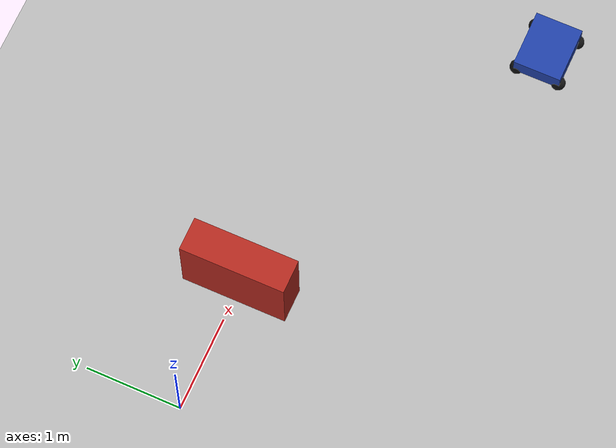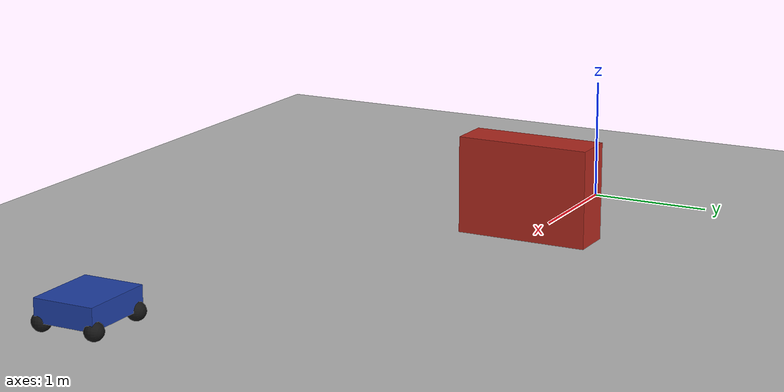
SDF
<?xml version="1.0"?>
<sdf version="1.7">
  <world name="phase1_omni">
    <physics name="1ms" type="ignored">
      <max_step_size>0.001</max_step_size>
      <real_time_factor>1.0</real_time_factor>
    </physics>

    <plugin
      filename="ignition-gazebo-physics-system"
      name="ignition::gazebo::systems::Physics"/>
    <plugin
      filename="ignition-gazebo-user-commands-system"
      name="ignition::gazebo::systems::UserCommands"/>
    <plugin
      filename="ignition-gazebo-scene-broadcaster-system"
      name="ignition::gazebo::systems::SceneBroadcaster"/>
    <plugin
      filename="ignition-gazebo-sensors-system"
      name="ignition::gazebo::systems::Sensors">
      <render_engine>ogre2</render_engine>
    </plugin>

    <light type="directional" name="sun">
      <cast_shadows>true</cast_shadows>
      <pose>0 0 10 0 0 0</pose>
      <diffuse>0.9 0.9 0.9 1</diffuse>
      <specular>0.2 0.2 0.2 1</specular>
      <attenuation>
        <range>1000</range>
        <constant>0.9</constant>
        <linear>0.01</linear>
        <quadratic>0.001</quadratic>
      </attenuation>
      <direction>-0.5 0.1 -0.9</direction>
    </light>

    <model name="ground_plane">
      <static>true</static>
      <link name="ground_link">
        <collision name="ground_collision">
          <geometry>
            <plane>
              <normal>0 0 1</normal>
              <size>20 20</size>
            </plane>
          </geometry>
          <surface>
            <friction>
              <ode>
                <mu>50</mu>
                <mu2>50</mu2>
              </ode>
            </friction>
          </surface>
        </collision>
        <visual name="ground_visual">
          <geometry>
            <plane>
              <normal>0 0 1</normal>
              <size>20 20</size>
            </plane>
          </geometry>
          <material>
            <ambient>0.72 0.72 0.72 1</ambient>
            <diffuse>0.72 0.72 0.72 1</diffuse>
            <specular>0.05 0.05 0.05 1</specular>
          </material>
        </visual>
      </link>
    </model>

    <model name="center_block">
      <static>true</static>
      <pose>1.4 0 0.4 0 0 0</pose>
      <link name="block_link">
        <collision name="block_collision">
          <geometry>
            <box><size>0.35 1.10 0.80</size></box>
          </geometry>
        </collision>
        <visual name="block_visual">
          <geometry>
            <box><size>0.35 1.10 0.80</size></box>
          </geometry>
          <material>
            <ambient>0.70 0.16 0.12 1</ambient>
            <diffuse>0.70 0.16 0.12 1</diffuse>
            <specular>0.05 0.05 0.05 1</specular>
          </material>
        </visual>
      </link>
    </model>

    <model name="rm_sentry_2027" xmlns:ignition="http://ignitionrobotics.org/schema">
      <pose>4.90 -1.80 0 0 0 0</pose>

      <link name="base_link">
        <inertial>
          <pose>0 0 0.17 0 0 0</pose>
          <mass>30.0</mass>
          <inertia>
            <ixx>0.706</ixx>
            <ixy>0</ixy>
            <ixz>0</ixz>
            <iyy>0.981</iyy>
            <iyz>0</iyz>
            <izz>1.525</izz>
          </inertia>
        </inertial>
        <collision name="base_collision">
          <pose>0 0 0.17 0 0 0</pose>
          <geometry>
            <box>
              <size>0.60 0.50 0.18</size>
            </box>
          </geometry>
        </collision>
        <visual name="base_visual">
          <pose>0 0 0.17 0 0 0</pose>
          <geometry>
            <box>
              <size>0.60 0.50 0.18</size>
            </box>
          </geometry>
          <material>
            <ambient>0.12 0.25 0.65 1</ambient>
            <diffuse>0.12 0.25 0.65 1</diffuse>
            <specular>0.15 0.15 0.15 1</specular>
          </material>
        </visual>
      </link>

      <link name="sim_lidar_link">
        <pose relative_to="base_link">0 0 0.35 0 0 0</pose>
        <inertial>
          <mass>0.1</mass>
          <inertia>
            <ixx>0.0001</ixx><ixy>0</ixy><ixz>0</ixz>
            <iyy>0.0001</iyy><iyz>0</iyz><izz>0.0001</izz>
          </inertia>
        </inertial>
        <sensor name="phase1_planar_lidar" type="gpu_lidar">
          <topic>/model/rm_sentry_2027/sim_lidar/scan</topic>
          <update_rate>15</update_rate>
          <lidar>
            <scan>
              <horizontal>
                <samples>720</samples>
                <resolution>1</resolution>
                <min_angle>-3.14159265359</min_angle>
                <max_angle>3.14159265359</max_angle>
              </horizontal>
              <vertical>
                <samples>1</samples>
                <resolution>1</resolution>
                <min_angle>0</min_angle>
                <max_angle>0</max_angle>
              </vertical>
            </scan>
            <range>
              <min>0.10</min>
              <max>8.0</max>
              <resolution>0.01</resolution>
            </range>
            <noise>
              <type>gaussian</type>
              <mean>0.0</mean>
              <stddev>0.01</stddev>
            </noise>
          </lidar>
          <alwaysOn>1</alwaysOn>
          <visualize>false</visualize>
        </sensor>
      </link>

      <joint name="base_link_to_sim_lidar_link" type="fixed">
        <parent>base_link</parent>
        <child>sim_lidar_link</child>
      </joint>

      <link name="front_left_wheel">
        <pose>0.25 0.225 0.075 -1.57079632679 0 0</pose>
        <inertial>
          <mass>1.0</mass>
          <inertia>
            <ixx>0.00225</ixx><ixy>0</ixy><ixz>0</ixz>
            <iyy>0.00225</iyy><iyz>0</iyz><izz>0.00225</izz>
          </inertia>
        </inertial>
        <collision name="collision">
          <geometry><sphere><radius>0.075</radius></sphere></geometry>
          <surface>
            <friction>
              <ode>
                <mu>1.0</mu><mu2>0.0</mu2>
                <fdir1 ignition:expressed_in="base_link">1 -1 0</fdir1>
              </ode>
            </friction>
          </surface>
        </collision>
        <visual name="visual">
          <geometry><sphere><radius>0.075</radius></sphere></geometry>
          <material><ambient>0.08 0.08 0.08 1</ambient><diffuse>0.08 0.08 0.08 1</diffuse></material>
        </visual>
      </link>

      <link name="front_right_wheel">
        <pose>0.25 -0.225 0.075 -1.57079632679 0 0</pose>
        <inertial>
          <mass>1.0</mass>
          <inertia>
            <ixx>0.00225</ixx><ixy>0</ixy><ixz>0</ixz>
            <iyy>0.00225</iyy><iyz>0</iyz><izz>0.00225</izz>
          </inertia>
        </inertial>
        <collision name="collision">
          <geometry><sphere><radius>0.075</radius></sphere></geometry>
          <surface>
            <friction>
              <ode>
                <mu>1.0</mu><mu2>0.0</mu2>
                <fdir1 ignition:expressed_in="base_link">1 1 0</fdir1>
              </ode>
            </friction>
          </surface>
        </collision>
        <visual name="visual">
          <geometry><sphere><radius>0.075</radius></sphere></geometry>
          <material><ambient>0.08 0.08 0.08 1</ambient><diffuse>0.08 0.08 0.08 1</diffuse></material>
        </visual>
      </link>

      <link name="rear_left_wheel">
        <pose>-0.25 0.225 0.075 -1.57079632679 0 0</pose>
        <inertial>
          <mass>1.0</mass>
          <inertia>
            <ixx>0.00225</ixx><ixy>0</ixy><ixz>0</ixz>
            <iyy>0.00225</iyy><iyz>0</iyz><izz>0.00225</izz>
          </inertia>
        </inertial>
        <collision name="collision">
          <geometry><sphere><radius>0.075</radius></sphere></geometry>
          <surface>
            <friction>
              <ode>
                <mu>1.0</mu><mu2>0.0</mu2>
                <fdir1 ignition:expressed_in="base_link">1 1 0</fdir1>
              </ode>
            </friction>
          </surface>
        </collision>
        <visual name="visual">
          <geometry><sphere><radius>0.075</radius></sphere></geometry>
          <material><ambient>0.08 0.08 0.08 1</ambient><diffuse>0.08 0.08 0.08 1</diffuse></material>
        </visual>
      </link>

      <link name="rear_right_wheel">
        <pose>-0.25 -0.225 0.075 -1.57079632679 0 0</pose>
        <inertial>
          <mass>1.0</mass>
          <inertia>
            <ixx>0.00225</ixx><ixy>0</ixy><ixz>0</ixz>
            <iyy>0.00225</iyy><iyz>0</iyz><izz>0.00225</izz>
          </inertia>
        </inertial>
        <collision name="collision">
          <geometry><sphere><radius>0.075</radius></sphere></geometry>
          <surface>
            <friction>
              <ode>
                <mu>1.0</mu><mu2>0.0</mu2>
                <fdir1 ignition:expressed_in="base_link">1 -1 0</fdir1>
              </ode>
            </friction>
          </surface>
        </collision>
        <visual name="visual">
          <geometry><sphere><radius>0.075</radius></sphere></geometry>
          <material><ambient>0.08 0.08 0.08 1</ambient><diffuse>0.08 0.08 0.08 1</diffuse></material>
        </visual>
      </link>

      <joint name="front_left_wheel_joint" type="revolute">
        <parent>base_link</parent><child>front_left_wheel</child>
        <axis><xyz>0 0 1</xyz></axis>
      </joint>
      <joint name="front_right_wheel_joint" type="revolute">
        <parent>base_link</parent><child>front_right_wheel</child>
        <axis><xyz>0 0 1</xyz></axis>
      </joint>
      <joint name="rear_left_wheel_joint" type="revolute">
        <parent>base_link</parent><child>rear_left_wheel</child>
        <axis><xyz>0 0 1</xyz></axis>
      </joint>
      <joint name="rear_right_wheel_joint" type="revolute">
        <parent>base_link</parent><child>rear_right_wheel</child>
        <axis><xyz>0 0 1</xyz></axis>
      </joint>

      <plugin
        filename="ignition-gazebo-mecanum-drive-system"
        name="ignition::gazebo::systems::MecanumDrive">
        <front_left_joint>front_left_wheel_joint</front_left_joint>
        <front_right_joint>front_right_wheel_joint</front_right_joint>
        <back_left_joint>rear_left_wheel_joint</back_left_joint>
        <back_right_joint>rear_right_wheel_joint</back_right_joint>
        <wheel_separation>0.45</wheel_separation>
        <wheelbase>0.50</wheelbase>
        <wheel_radius>0.075</wheel_radius>
        <min_velocity>-2.0</min_velocity>
        <max_velocity>2.0</max_velocity>
        <min_acceleration>-2.0</min_acceleration>
        <max_acceleration>2.0</max_acceleration>
        <topic>/model/rm_sentry_2027/cmd_vel</topic>
      </plugin>

      <plugin
        filename="ignition-gazebo-odometry-publisher-system"
        name="ignition::gazebo::systems::OdometryPublisher">
        <odom_publish_frequency>50</odom_publish_frequency>
        <odom_topic>/model/rm_sentry_2027/odometry</odom_topic>
        <tf_topic>/model/rm_sentry_2027/ground_truth_pose</tf_topic>
        <odom_frame>odom</odom_frame>
        <robot_base_frame>base_link</robot_base_frame>
        <dimensions>2</dimensions>
      </plugin>
    </model>
  </world>
</sdf>
